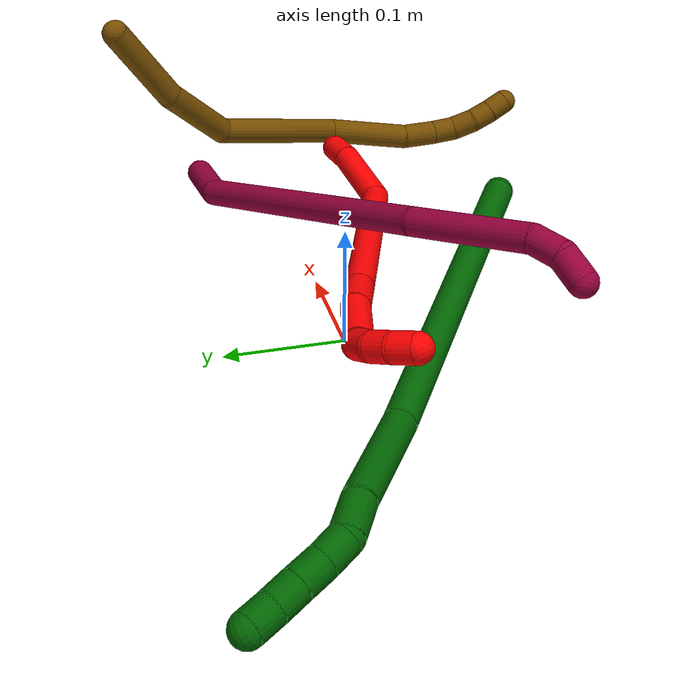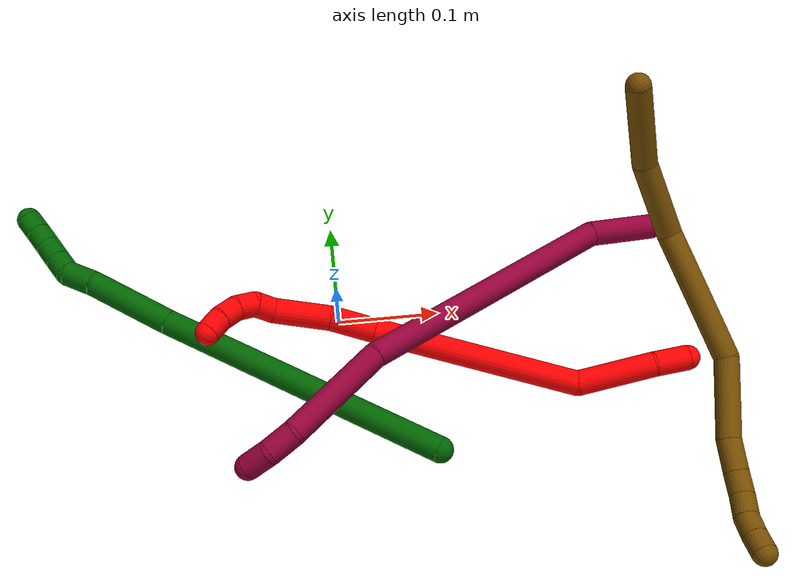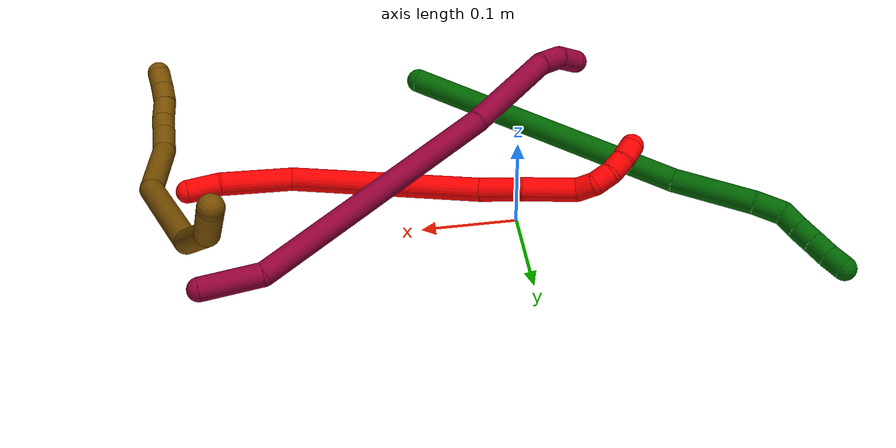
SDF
<sdf version="1.7">
 <world name="default">
  <model name="2">
   <static>0</static>
   <link name="2">
    <collision name="collision-cylinder-e_1_1_4">
     <pose>-0.013684 0.004619 0.009258 -0.462796 -0.923393 0.233405</pose>
     <geometry><cylinder><radius>0.0125</radius><length>0.034311</length></cylinder></geometry>
     <surface>
      <friction><ode><mu>1.16</mu><mu2>1.16</mu2><slip1>0</slip1><slip2>0</slip2></ode></friction>
      <contact><ode><kp>1e+06</kp><kd>1</kd><max_vel>0</max_vel><min_depth>0.001</min_depth></ode></contact>
     </surface>
    </collision>
    <visual name="visual-cylinder-e_1_1_4">
     <pose>-0.013684 0.004619 0.009258 -0.462796 -0.923393 0.233405</pose>
     <geometry><cylinder><radius>0.0125</radius><length>0.034311</length></cylinder></geometry>
     <material><ambient>1 0 0 1</ambient></material>
    </visual>
    <collision name="collision-cylinder-e_2_4_5">
     <pose>-0.054428 0.016309 0.045211 -0.258907 -0.775246 0.106201</pose>
     <geometry><cylinder><radius>0.0125</radius><length>0.077327</length></cylinder></geometry>
     <surface>
      <friction><ode><mu>1.16</mu><mu2>1.16</mu2><slip1>0</slip1><slip2>0</slip2></ode></friction>
      <contact><ode><kp>1e+06</kp><kd>1</kd><max_vel>0</max_vel><min_depth>0.001</min_depth></ode></contact>
     </surface>
    </collision>
    <visual name="visual-cylinder-e_2_4_5">
     <pose>-0.054428 0.016309 0.045211 -0.258907 -0.775246 0.106201</pose>
     <geometry><cylinder><radius>0.0125</radius><length>0.077327</length></cylinder></geometry>
     <material><ambient>1 0 0 1</ambient></material>
    </visual>
    <collision name="collision-cylinder-e_3_5_6">
     <pose>-0.175763 0.008448 0.110957 0.365194 -1.15339 -0.239072</pose>
     <geometry><cylinder><radius>0.0125</radius><length>0.206258</length></cylinder></geometry>
     <surface>
      <friction><ode><mu>1.16</mu><mu2>1.16</mu2><slip1>0</slip1><slip2>0</slip2></ode></friction>
      <contact><ode><kp>1e+06</kp><kd>1</kd><max_vel>0</max_vel><min_depth>0.001</min_depth></ode></contact>
     </surface>
    </collision>
    <visual name="visual-cylinder-e_3_5_6">
     <pose>-0.175763 0.008448 0.110957 0.365194 -1.15339 -0.239072</pose>
     <geometry><cylinder><radius>0.0125</radius><length>0.206258</length></cylinder></geometry>
     <material><ambient>1 0 0 1</ambient></material>
    </visual>
    <collision name="collision-cylinder-e_4_6_7">
     <pose>-0.29113 -0.008798 0.157003 0.319664 -1.2347 -0.227895</pose>
     <geometry><cylinder><radius>0.0125</radius><length>0.044685</length></cylinder></geometry>
     <surface>
      <friction><ode><mu>1.16</mu><mu2>1.16</mu2><slip1>0</slip1><slip2>0</slip2></ode></friction>
      <contact><ode><kp>1e+06</kp><kd>1</kd><max_vel>0</max_vel><min_depth>0.001</min_depth></ode></contact>
     </surface>
    </collision>
    <visual name="visual-cylinder-e_4_6_7">
     <pose>-0.29113 -0.008798 0.157003 0.319664 -1.2347 -0.227895</pose>
     <geometry><cylinder><radius>0.0125</radius><length>0.044685</length></cylinder></geometry>
     <material><ambient>1 0 0 1</ambient></material>
    </visual>
    <collision name="collision-cylinder-e_5_7_8">
     <pose>-0.337468 -0.012683 0.176971 0.120362 -1.09317 -0.073286</pose>
     <geometry><cylinder><radius>0.0125</radius><length>0.056854</length></cylinder></geometry>
     <surface>
      <friction><ode><mu>1.16</mu><mu2>1.16</mu2><slip1>0</slip1><slip2>0</slip2></ode></friction>
      <contact><ode><kp>1e+06</kp><kd>1</kd><max_vel>0</max_vel><min_depth>0.001</min_depth></ode></contact>
     </surface>
    </collision>
    <visual name="visual-cylinder-e_5_7_8">
     <pose>-0.337468 -0.012683 0.176971 0.120362 -1.09317 -0.073286</pose>
     <geometry><cylinder><radius>0.0125</radius><length>0.056854</length></cylinder></geometry>
     <material><ambient>1 0 0 1</ambient></material>
    </visual>
    <collision name="collision-cylinder-e_6_8_9">
     <pose>-0.372774 -0.013339 0.190287 -1.21094 -1.47416 1.12199</pose>
     <geometry><cylinder><radius>0.0125</radius><length>0.020214</length></cylinder></geometry>
     <surface>
      <friction><ode><mu>1.16</mu><mu2>1.16</mu2><slip1>0</slip1><slip2>0</slip2></ode></friction>
      <contact><ode><kp>1e+06</kp><kd>1</kd><max_vel>0</max_vel><min_depth>0.001</min_depth></ode></contact>
     </surface>
    </collision>
    <visual name="visual-cylinder-e_6_8_9">
     <pose>-0.372774 -0.013339 0.190287 -1.21094 -1.47416 1.12199</pose>
     <geometry><cylinder><radius>0.0125</radius><length>0.020214</length></cylinder></geometry>
     <material><ambient>1 0 0 1</ambient></material>
    </visual>
    <collision name="collision-cylinder-e_7_9_10">
     <pose>-0.391137 -0.007131 0.193185 -1.12132 -0.954681 0.628024</pose>
     <geometry><cylinder><radius>0.0125</radius><length>0.020347</length></cylinder></geometry>
     <surface>
      <friction><ode><mu>1.16</mu><mu2>1.16</mu2><slip1>0</slip1><slip2>0</slip2></ode></friction>
      <contact><ode><kp>1e+06</kp><kd>1</kd><max_vel>0</max_vel><min_depth>0.001</min_depth></ode></contact>
     </surface>
    </collision>
    <visual name="visual-cylinder-e_7_9_10">
     <pose>-0.391137 -0.007131 0.193185 -1.12132 -0.954681 0.628024</pose>
     <geometry><cylinder><radius>0.0125</radius><length>0.020347</length></cylinder></geometry>
     <material><ambient>1 0 0 1</ambient></material>
    </visual>
    <collision name="collision-cylinder-e_8_10_11">
     <pose>-0.405232 0.005666 0.198928 -1.16892 -0.617779 0.416105</pose>
     <geometry><cylinder><radius>0.0125</radius><length>0.02</length></cylinder></geometry>
     <surface>
      <friction><ode><mu>1.16</mu><mu2>1.16</mu2><slip1>0</slip1><slip2>0</slip2></ode></friction>
      <contact><ode><kp>1e+06</kp><kd>1</kd><max_vel>0</max_vel><min_depth>0.001</min_depth></ode></contact>
     </surface>
    </collision>
    <visual name="visual-cylinder-e_8_10_11">
     <pose>-0.405232 0.005666 0.198928 -1.16892 -0.617779 0.416105</pose>
     <geometry><cylinder><radius>0.0125</radius><length>0.02</length></cylinder></geometry>
     <material><ambient>1 0 0 1</ambient></material>
    </visual>
    <collision name="collision-cylinder-e_9_11_2">
     <pose>-0.41481 0.021654 0.205819 -1.15931 -0.388135 0.255936</pose>
     <geometry><cylinder><radius>0.0125</radius><length>0.020004</length></cylinder></geometry>
     <surface>
      <friction><ode><mu>1.16</mu><mu2>1.16</mu2><slip1>0</slip1><slip2>0</slip2></ode></friction>
      <contact><ode><kp>1e+06</kp><kd>1</kd><max_vel>0</max_vel><min_depth>0.001</min_depth></ode></contact>
     </surface>
    </collision>
    <visual name="visual-cylinder-e_9_11_2">
     <pose>-0.41481 0.021654 0.205819 -1.15931 -0.388135 0.255936</pose>
     <geometry><cylinder><radius>0.0125</radius><length>0.020004</length></cylinder></geometry>
     <material><ambient>1 0 0 1</ambient></material>
    </visual>
    <collision name="collision-sphere-2">
     <pose>-0.418595 0.030139 0.209522 0 -0 0</pose>
     <geometry><sphere><radius>0.0125</radius></sphere></geometry>
     <surface>
      <friction><ode><mu>1.16</mu><mu2>1.16</mu2><slip1>0</slip1><slip2>0</slip2></ode></friction>
      <contact><ode><kp>1e+06</kp><kd>1</kd><max_vel>0</max_vel><min_depth>0.001</min_depth></ode></contact>
     </surface>
    </collision>
    <visual name="visual-sphere-2">
     <pose>-0.418595 0.030139 0.209522 0 -0 0</pose>
     <geometry><sphere><radius>0.0125</radius></sphere></geometry>
     <material><ambient>1 0 0 1</ambient></material>
    </visual>
    <collision name="collision-sphere-11">
     <pose>-0.411024 0.013169 0.202117 0 -0 0</pose>
     <geometry><sphere><radius>0.0125</radius></sphere></geometry>
     <surface>
      <friction><ode><mu>1.16</mu><mu2>1.16</mu2><slip1>0</slip1><slip2>0</slip2></ode></friction>
      <contact><ode><kp>1e+06</kp><kd>1</kd><max_vel>0</max_vel><min_depth>0.001</min_depth></ode></contact>
     </surface>
    </collision>
    <visual name="visual-sphere-11">
     <pose>-0.411024 0.013169 0.202117 0 -0 0</pose>
     <geometry><sphere><radius>0.0125</radius></sphere></geometry>
     <material><ambient>1 0 0 1</ambient></material>
    </visual>
    <collision name="collision-sphere-10">
     <pose>-0.39944 -0.001836 0.19574 0 -0 0</pose>
     <geometry><sphere><radius>0.0125</radius></sphere></geometry>
     <surface>
      <friction><ode><mu>1.16</mu><mu2>1.16</mu2><slip1>0</slip1><slip2>0</slip2></ode></friction>
      <contact><ode><kp>1e+06</kp><kd>1</kd><max_vel>0</max_vel><min_depth>0.001</min_depth></ode></contact>
     </surface>
    </collision>
    <visual name="visual-sphere-10">
     <pose>-0.39944 -0.001836 0.19574 0 -0 0</pose>
     <geometry><sphere><radius>0.0125</radius></sphere></geometry>
     <material><ambient>1 0 0 1</ambient></material>
    </visual>
    <collision name="collision-sphere-9">
     <pose>-0.382833 -0.012426 0.190631 0 -0 0</pose>
     <geometry><sphere><radius>0.0125</radius></sphere></geometry>
     <surface>
      <friction><ode><mu>1.16</mu><mu2>1.16</mu2><slip1>0</slip1><slip2>0</slip2></ode></friction>
      <contact><ode><kp>1e+06</kp><kd>1</kd><max_vel>0</max_vel><min_depth>0.001</min_depth></ode></contact>
     </surface>
    </collision>
    <visual name="visual-sphere-9">
     <pose>-0.382833 -0.012426 0.190631 0 -0 0</pose>
     <geometry><sphere><radius>0.0125</radius></sphere></geometry>
     <material><ambient>1 0 0 1</ambient></material>
    </visual>
    <collision name="collision-sphere-4">
     <pose>-0.027368 0.009239 0.018517 0 -0 0</pose>
     <geometry><sphere><radius>0.0125</radius></sphere></geometry>
     <surface>
      <friction><ode><mu>1.16</mu><mu2>1.16</mu2><slip1>0</slip1><slip2>0</slip2></ode></friction>
      <contact><ode><kp>1e+06</kp><kd>1</kd><max_vel>0</max_vel><min_depth>0.001</min_depth></ode></contact>
     </surface>
    </collision>
    <visual name="visual-sphere-4">
     <pose>-0.027368 0.009239 0.018517 0 -0 0</pose>
     <geometry><sphere><radius>0.0125</radius></sphere></geometry>
     <material><ambient>1 0 0 1</ambient></material>
    </visual>
    <collision name="collision-sphere-1">
     <geometry><sphere><radius>0.0125</radius></sphere></geometry>
     <surface>
      <friction><ode><mu>1.16</mu><mu2>1.16</mu2><slip1>0</slip1><slip2>0</slip2></ode></friction>
      <contact><ode><kp>1e+06</kp><kd>1</kd><max_vel>0</max_vel><min_depth>0.001</min_depth></ode></contact>
     </surface>
    </collision>
    <visual name="visual-sphere-1">
     <geometry><sphere><radius>0.0125</radius></sphere></geometry>
     <material><ambient>1 0 0 1</ambient></material>
    </visual>
    <collision name="collision-sphere-8">
     <pose>-0.362714 -0.014252 0.189944 0 -0 0</pose>
     <geometry><sphere><radius>0.0125</radius></sphere></geometry>
     <surface>
      <friction><ode><mu>1.16</mu><mu2>1.16</mu2><slip1>0</slip1><slip2>0</slip2></ode></friction>
      <contact><ode><kp>1e+06</kp><kd>1</kd><max_vel>0</max_vel><min_depth>0.001</min_depth></ode></contact>
     </surface>
    </collision>
    <visual name="visual-sphere-8">
     <pose>-0.362714 -0.014252 0.189944 0 -0 0</pose>
     <geometry><sphere><radius>0.0125</radius></sphere></geometry>
     <material><ambient>1 0 0 1</ambient></material>
    </visual>
    <collision name="collision-sphere-5">
     <pose>-0.081488 0.023379 0.071906 0 -0 0</pose>
     <geometry><sphere><radius>0.0125</radius></sphere></geometry>
     <surface>
      <friction><ode><mu>1.16</mu><mu2>1.16</mu2><slip1>0</slip1><slip2>0</slip2></ode></friction>
      <contact><ode><kp>1e+06</kp><kd>1</kd><max_vel>0</max_vel><min_depth>0.001</min_depth></ode></contact>
     </surface>
    </collision>
    <visual name="visual-sphere-5">
     <pose>-0.081488 0.023379 0.071906 0 -0 0</pose>
     <geometry><sphere><radius>0.0125</radius></sphere></geometry>
     <material><ambient>1 0 0 1</ambient></material>
    </visual>
    <collision name="collision-sphere-6">
     <pose>-0.270038 -0.006483 0.150008 0 -0 0</pose>
     <geometry><sphere><radius>0.0125</radius></sphere></geometry>
     <surface>
      <friction><ode><mu>1.16</mu><mu2>1.16</mu2><slip1>0</slip1><slip2>0</slip2></ode></friction>
      <contact><ode><kp>1e+06</kp><kd>1</kd><max_vel>0</max_vel><min_depth>0.001</min_depth></ode></contact>
     </surface>
    </collision>
    <visual name="visual-sphere-6">
     <pose>-0.270038 -0.006483 0.150008 0 -0 0</pose>
     <geometry><sphere><radius>0.0125</radius></sphere></geometry>
     <material><ambient>1 0 0 1</ambient></material>
    </visual>
    <collision name="collision-sphere-7">
     <pose>-0.312222 -0.011114 0.163999 0 -0 0</pose>
     <geometry><sphere><radius>0.0125</radius></sphere></geometry>
     <surface>
      <friction><ode><mu>1.16</mu><mu2>1.16</mu2><slip1>0</slip1><slip2>0</slip2></ode></friction>
      <contact><ode><kp>1e+06</kp><kd>1</kd><max_vel>0</max_vel><min_depth>0.001</min_depth></ode></contact>
     </surface>
    </collision>
    <visual name="visual-sphere-7">
     <pose>-0.312222 -0.011114 0.163999 0 -0 0</pose>
     <geometry><sphere><radius>0.0125</radius></sphere></geometry>
     <material><ambient>1 0 0 1</ambient></material>
    </visual>
    <inertial>
     <pose>-0.210046 0.004359 0.1193 0 -0 0</pose>
     <mass>0.5</mass>
     <inertia>
      <ixx>0.000238</ixx>
      <ixy>0</ixy>
      <ixz>0</ixz>
      <iyy>0.000739</iyy>
      <iyz>0</iyz>
      <izz>0.00085</izz>
     </inertia>
    </inertial>
   </link>
   <pose>0.338247 -0.076214 0.020033 2.6486 0.492235 -0.390696</pose>
  </model>
  <model name="6">
   <static>0</static>
   <link name="6">
    <collision name="collision-cylinder-e_1_1_4">
     <pose>-0.133121 0.039055 -0.055755 -2.53055 -1.0981 2.18962</pose>
     <geometry><cylinder><radius>0.0125</radius><length>0.299033</length></cylinder></geometry>
     <surface>
      <friction><ode><mu>1.16</mu><mu2>1.16</mu2><slip1>0</slip1><slip2>0</slip2></ode></friction>
      <contact><ode><kp>1e+06</kp><kd>1</kd><max_vel>0</max_vel><min_depth>0.001</min_depth></ode></contact>
     </surface>
    </collision>
    <visual name="visual-cylinder-e_1_1_4">
     <pose>-0.133121 0.039055 -0.055755 -2.53055 -1.0981 2.18962</pose>
     <geometry><cylinder><radius>0.0125</radius><length>0.299033</length></cylinder></geometry>
     <material><ambient>0 0.392157 0.003922 1</ambient></material>
    </visual>
    <collision name="collision-cylinder-e_2_4_5">
     <pose>-0.304195 0.094603 -0.124396 -2.23399 -1.06681 1.7608</pose>
     <geometry><cylinder><radius>0.0125</radius><length>0.086682</length></cylinder></geometry>
     <surface>
      <friction><ode><mu>1.16</mu><mu2>1.16</mu2><slip1>0</slip1><slip2>0</slip2></ode></friction>
      <contact><ode><kp>1e+06</kp><kd>1</kd><max_vel>0</max_vel><min_depth>0.001</min_depth></ode></contact>
     </surface>
    </collision>
    <visual name="visual-cylinder-e_2_4_5">
     <pose>-0.304195 0.094603 -0.124396 -2.23399 -1.06681 1.7608</pose>
     <geometry><cylinder><radius>0.0125</radius><length>0.086682</length></cylinder></geometry>
     <material><ambient>0 0.392157 0.003922 1</ambient></material>
    </visual>
    <collision name="collision-cylinder-e_3_5_6">
     <pose>-0.356062 0.114369 -0.142535 -2.58448 -1.15229 2.31223</pose>
     <geometry><cylinder><radius>0.0125</radius><length>0.03046</length></cylinder></geometry>
     <surface>
      <friction><ode><mu>1.16</mu><mu2>1.16</mu2><slip1>0</slip1><slip2>0</slip2></ode></friction>
      <contact><ode><kp>1e+06</kp><kd>1</kd><max_vel>0</max_vel><min_depth>0.001</min_depth></ode></contact>
     </surface>
    </collision>
    <visual name="visual-cylinder-e_3_5_6">
     <pose>-0.356062 0.114369 -0.142535 -2.58448 -1.15229 2.31223</pose>
     <geometry><cylinder><radius>0.0125</radius><length>0.03046</length></cylinder></geometry>
     <material><ambient>0 0.392157 0.003922 1</ambient></material>
    </visual>
    <collision name="collision-cylinder-e_4_6_7">
     <pose>-0.376482 0.120655 -0.155695 -2.77741 -0.655313 2.14869</pose>
     <geometry><cylinder><radius>0.0125</radius><length>0.021344</length></cylinder></geometry>
     <surface>
      <friction><ode><mu>1.16</mu><mu2>1.16</mu2><slip1>0</slip1><slip2>0</slip2></ode></friction>
      <contact><ode><kp>1e+06</kp><kd>1</kd><max_vel>0</max_vel><min_depth>0.001</min_depth></ode></contact>
     </surface>
    </collision>
    <visual name="visual-cylinder-e_4_6_7">
     <pose>-0.376482 0.120655 -0.155695 -2.77741 -0.655313 2.14869</pose>
     <geometry><cylinder><radius>0.0125</radius><length>0.021344</length></cylinder></geometry>
     <material><ambient>0 0.392157 0.003922 1</ambient></material>
    </visual>
    <collision name="collision-cylinder-e_5_7_8">
     <pose>-0.389525 0.127721 -0.171286 -2.65637 -0.645281 1.86712</pose>
     <geometry><cylinder><radius>0.0125</radius><length>0.021749</length></cylinder></geometry>
     <surface>
      <friction><ode><mu>1.16</mu><mu2>1.16</mu2><slip1>0</slip1><slip2>0</slip2></ode></friction>
      <contact><ode><kp>1e+06</kp><kd>1</kd><max_vel>0</max_vel><min_depth>0.001</min_depth></ode></contact>
     </surface>
    </collision>
    <visual name="visual-cylinder-e_5_7_8">
     <pose>-0.389525 0.127721 -0.171286 -2.65637 -0.645281 1.86712</pose>
     <geometry><cylinder><radius>0.0125</radius><length>0.021749</length></cylinder></geometry>
     <material><ambient>0 0.392157 0.003922 1</ambient></material>
    </visual>
    <collision name="collision-cylinder-e_6_8_9">
     <pose>-0.402341 0.135458 -0.18633 -2.67735 -0.651532 1.92046</pose>
     <geometry><cylinder><radius>0.0125</radius><length>0.020699</length></cylinder></geometry>
     <surface>
      <friction><ode><mu>1.16</mu><mu2>1.16</mu2><slip1>0</slip1><slip2>0</slip2></ode></friction>
      <contact><ode><kp>1e+06</kp><kd>1</kd><max_vel>0</max_vel><min_depth>0.001</min_depth></ode></contact>
     </surface>
    </collision>
    <visual name="visual-cylinder-e_6_8_9">
     <pose>-0.402341 0.135458 -0.18633 -2.67735 -0.651532 1.92046</pose>
     <geometry><cylinder><radius>0.0125</radius><length>0.020699</length></cylinder></geometry>
     <material><ambient>0 0.392157 0.003922 1</ambient></material>
    </visual>
    <collision name="collision-cylinder-e_7_9_2">
     <pose>-0.414828 0.143411 -0.200287 -2.56746 -0.66873 1.73287</pose>
     <geometry><cylinder><radius>0.0125</radius><length>0.020034</length></cylinder></geometry>
     <surface>
      <friction><ode><mu>1.16</mu><mu2>1.16</mu2><slip1>0</slip1><slip2>0</slip2></ode></friction>
      <contact><ode><kp>1e+06</kp><kd>1</kd><max_vel>0</max_vel><min_depth>0.001</min_depth></ode></contact>
     </surface>
    </collision>
    <visual name="visual-cylinder-e_7_9_2">
     <pose>-0.414828 0.143411 -0.200287 -2.56746 -0.66873 1.73287</pose>
     <geometry><cylinder><radius>0.0125</radius><length>0.020034</length></cylinder></geometry>
     <material><ambient>0 0.392157 0.003922 1</ambient></material>
    </visual>
    <collision name="collision-sphere-2">
     <pose>-0.421038 0.147679 -0.206886 0 -0 0</pose>
     <geometry><sphere><radius>0.0125</radius></sphere></geometry>
     <surface>
      <friction><ode><mu>1.16</mu><mu2>1.16</mu2><slip1>0</slip1><slip2>0</slip2></ode></friction>
      <contact><ode><kp>1e+06</kp><kd>1</kd><max_vel>0</max_vel><min_depth>0.001</min_depth></ode></contact>
     </surface>
    </collision>
    <visual name="visual-sphere-2">
     <pose>-0.421038 0.147679 -0.206886 0 -0 0</pose>
     <geometry><sphere><radius>0.0125</radius></sphere></geometry>
     <material><ambient>0 0.392157 0.003922 1</ambient></material>
    </visual>
    <collision name="collision-sphere-9">
     <pose>-0.408617 0.139143 -0.193688 0 -0 0</pose>
     <geometry><sphere><radius>0.0125</radius></sphere></geometry>
     <surface>
      <friction><ode><mu>1.16</mu><mu2>1.16</mu2><slip1>0</slip1><slip2>0</slip2></ode></friction>
      <contact><ode><kp>1e+06</kp><kd>1</kd><max_vel>0</max_vel><min_depth>0.001</min_depth></ode></contact>
     </surface>
    </collision>
    <visual name="visual-sphere-9">
     <pose>-0.408617 0.139143 -0.193688 0 -0 0</pose>
     <geometry><sphere><radius>0.0125</radius></sphere></geometry>
     <material><ambient>0 0.392157 0.003922 1</ambient></material>
    </visual>
    <collision name="collision-sphere-4">
     <pose>-0.266243 0.078109 -0.11151 0 -0 0</pose>
     <geometry><sphere><radius>0.0125</radius></sphere></geometry>
     <surface>
      <friction><ode><mu>1.16</mu><mu2>1.16</mu2><slip1>0</slip1><slip2>0</slip2></ode></friction>
      <contact><ode><kp>1e+06</kp><kd>1</kd><max_vel>0</max_vel><min_depth>0.001</min_depth></ode></contact>
     </surface>
    </collision>
    <visual name="visual-sphere-4">
     <pose>-0.266243 0.078109 -0.11151 0 -0 0</pose>
     <geometry><sphere><radius>0.0125</radius></sphere></geometry>
     <material><ambient>0 0.392157 0.003922 1</ambient></material>
    </visual>
    <collision name="collision-sphere-1">
     <geometry><sphere><radius>0.0125</radius></sphere></geometry>
     <surface>
      <friction><ode><mu>1.16</mu><mu2>1.16</mu2><slip1>0</slip1><slip2>0</slip2></ode></friction>
      <contact><ode><kp>1e+06</kp><kd>1</kd><max_vel>0</max_vel><min_depth>0.001</min_depth></ode></contact>
     </surface>
    </collision>
    <visual name="visual-sphere-1">
     <geometry><sphere><radius>0.0125</radius></sphere></geometry>
     <material><ambient>0 0.392157 0.003922 1</ambient></material>
    </visual>
    <collision name="collision-sphere-8">
     <pose>-0.396066 0.131773 -0.178971 0 -0 0</pose>
     <geometry><sphere><radius>0.0125</radius></sphere></geometry>
     <surface>
      <friction><ode><mu>1.16</mu><mu2>1.16</mu2><slip1>0</slip1><slip2>0</slip2></ode></friction>
      <contact><ode><kp>1e+06</kp><kd>1</kd><max_vel>0</max_vel><min_depth>0.001</min_depth></ode></contact>
     </surface>
    </collision>
    <visual name="visual-sphere-8">
     <pose>-0.396066 0.131773 -0.178971 0 -0 0</pose>
     <geometry><sphere><radius>0.0125</radius></sphere></geometry>
     <material><ambient>0 0.392157 0.003922 1</ambient></material>
    </visual>
    <collision name="collision-sphere-5">
     <pose>-0.342147 0.111097 -0.137281 0 -0 0</pose>
     <geometry><sphere><radius>0.0125</radius></sphere></geometry>
     <surface>
      <friction><ode><mu>1.16</mu><mu2>1.16</mu2><slip1>0</slip1><slip2>0</slip2></ode></friction>
      <contact><ode><kp>1e+06</kp><kd>1</kd><max_vel>0</max_vel><min_depth>0.001</min_depth></ode></contact>
     </surface>
    </collision>
    <visual name="visual-sphere-5">
     <pose>-0.342147 0.111097 -0.137281 0 -0 0</pose>
     <geometry><sphere><radius>0.0125</radius></sphere></geometry>
     <material><ambient>0 0.392157 0.003922 1</ambient></material>
    </visual>
    <collision name="collision-sphere-6">
     <pose>-0.369978 0.117642 -0.147788 0 -0 0</pose>
     <geometry><sphere><radius>0.0125</radius></sphere></geometry>
     <surface>
      <friction><ode><mu>1.16</mu><mu2>1.16</mu2><slip1>0</slip1><slip2>0</slip2></ode></friction>
      <contact><ode><kp>1e+06</kp><kd>1</kd><max_vel>0</max_vel><min_depth>0.001</min_depth></ode></contact>
     </surface>
    </collision>
    <visual name="visual-sphere-6">
     <pose>-0.369978 0.117642 -0.147788 0 -0 0</pose>
     <geometry><sphere><radius>0.0125</radius></sphere></geometry>
     <material><ambient>0 0.392157 0.003922 1</ambient></material>
    </visual>
    <collision name="collision-sphere-7">
     <pose>-0.382985 0.123669 -0.163601 0 -0 0</pose>
     <geometry><sphere><radius>0.0125</radius></sphere></geometry>
     <surface>
      <friction><ode><mu>1.16</mu><mu2>1.16</mu2><slip1>0</slip1><slip2>0</slip2></ode></friction>
      <contact><ode><kp>1e+06</kp><kd>1</kd><max_vel>0</max_vel><min_depth>0.001</min_depth></ode></contact>
     </surface>
    </collision>
    <visual name="visual-sphere-7">
     <pose>-0.382985 0.123669 -0.163601 0 -0 0</pose>
     <geometry><sphere><radius>0.0125</radius></sphere></geometry>
     <material><ambient>0 0.392157 0.003922 1</ambient></material>
    </visual>
    <inertial>
     <pose>-0.220335 0.068785 -0.093429 0 -0 0</pose>
     <mass>0.5</mass>
     <inertia>
      <ixx>0.000231</ixx>
      <ixy>0</ixy>
      <ixz>0</ixz>
      <iyy>0.002924</iyy>
      <iyz>0</iyz>
      <izz>0.001426</izz>
     </inertia>
    </inertial>
   </link>
   <pose>0.081901 -0.158248 0.078672 0.922668 -0.140714 -0.100296</pose>
  </model>
  <model name="8">
   <static>0</static>
   <link name="8">
    <collision name="collision-cylinder-e_1_1_4">
     <pose>-0.024457 -0.00688 -0.019391 2.80066 -0.871392 -2.43325</pose>
     <geometry><cylinder><radius>0.0125</radius><length>0.063922</length></cylinder></geometry>
     <surface>
      <friction><ode><mu>1.16</mu><mu2>1.16</mu2><slip1>0</slip1><slip2>0</slip2></ode></friction>
      <contact><ode><kp>1e+06</kp><kd>1</kd><max_vel>0</max_vel><min_depth>0.001</min_depth></ode></contact>
     </surface>
    </collision>
    <visual name="visual-cylinder-e_1_1_4">
     <pose>-0.024457 -0.00688 -0.019391 2.80066 -0.871392 -2.43325</pose>
     <geometry><cylinder><radius>0.0125</radius><length>0.063922</length></cylinder></geometry>
     <material><ambient>0.584314 0 0.227451 1</ambient></material>
    </visual>
    <collision name="collision-cylinder-e_2_4_5">
     <pose>-0.160537 -0.082818 -0.076914 2.0753 -0.95557 -1.44037</pose>
     <geometry><cylinder><radius>0.0125</radius><length>0.273368</length></cylinder></geometry>
     <surface>
      <friction><ode><mu>1.16</mu><mu2>1.16</mu2><slip1>0</slip1><slip2>0</slip2></ode></friction>
      <contact><ode><kp>1e+06</kp><kd>1</kd><max_vel>0</max_vel><min_depth>0.001</min_depth></ode></contact>
     </surface>
    </collision>
    <visual name="visual-cylinder-e_2_4_5">
     <pose>-0.160537 -0.082818 -0.076914 2.0753 -0.95557 -1.44037</pose>
     <geometry><cylinder><radius>0.0125</radius><length>0.273368</length></cylinder></geometry>
     <material><ambient>0.584314 0 0.227451 1</ambient></material>
    </visual>
    <collision name="collision-cylinder-e_3_5_6">
     <pose>-0.31003 -0.189234 -0.125782 1.85067 -0.772375 -0.990159</pose>
     <geometry><cylinder><radius>0.0125</radius><length>0.108537</length></cylinder></geometry>
     <surface>
      <friction><ode><mu>1.16</mu><mu2>1.16</mu2><slip1>0</slip1><slip2>0</slip2></ode></friction>
      <contact><ode><kp>1e+06</kp><kd>1</kd><max_vel>0</max_vel><min_depth>0.001</min_depth></ode></contact>
     </surface>
    </collision>
    <visual name="visual-cylinder-e_3_5_6">
     <pose>-0.31003 -0.189234 -0.125782 1.85067 -0.772375 -0.990159</pose>
     <geometry><cylinder><radius>0.0125</radius><length>0.108537</length></cylinder></geometry>
     <material><ambient>0.584314 0 0.227451 1</ambient></material>
    </visual>
    <collision name="collision-cylinder-e_4_6_7">
     <pose>-0.355477 -0.236205 -0.143242 2.18107 -0.573467 -1.0301</pose>
     <geometry><cylinder><radius>0.0125</radius><length>0.027931</length></cylinder></geometry>
     <surface>
      <friction><ode><mu>1.16</mu><mu2>1.16</mu2><slip1>0</slip1><slip2>0</slip2></ode></friction>
      <contact><ode><kp>1e+06</kp><kd>1</kd><max_vel>0</max_vel><min_depth>0.001</min_depth></ode></contact>
     </surface>
    </collision>
    <visual name="visual-cylinder-e_4_6_7">
     <pose>-0.355477 -0.236205 -0.143242 2.18107 -0.573467 -1.0301</pose>
     <geometry><cylinder><radius>0.0125</radius><length>0.027931</length></cylinder></geometry>
     <material><ambient>0.584314 0 0.227451 1</ambient></material>
    </visual>
    <collision name="collision-cylinder-e_5_7_2">
     <pose>-0.366155 -0.253837 -0.159878 2.46144 -0.238584 -0.65325</pose>
     <geometry><cylinder><radius>0.0125</radius><length>0.026242</length></cylinder></geometry>
     <surface>
      <friction><ode><mu>1.16</mu><mu2>1.16</mu2><slip1>0</slip1><slip2>0</slip2></ode></friction>
      <contact><ode><kp>1e+06</kp><kd>1</kd><max_vel>0</max_vel><min_depth>0.001</min_depth></ode></contact>
     </surface>
    </collision>
    <visual name="visual-cylinder-e_5_7_2">
     <pose>-0.366155 -0.253837 -0.159878 2.46144 -0.238584 -0.65325</pose>
     <geometry><cylinder><radius>0.0125</radius><length>0.026242</length></cylinder></geometry>
     <material><ambient>0.584314 0 0.227451 1</ambient></material>
    </visual>
    <collision name="collision-sphere-2">
     <pose>-0.369256 -0.261855 -0.16979 0 -0 0</pose>
     <geometry><sphere><radius>0.0125</radius></sphere></geometry>
     <surface>
      <friction><ode><mu>1.16</mu><mu2>1.16</mu2><slip1>0</slip1><slip2>0</slip2></ode></friction>
      <contact><ode><kp>1e+06</kp><kd>1</kd><max_vel>0</max_vel><min_depth>0.001</min_depth></ode></contact>
     </surface>
    </collision>
    <visual name="visual-sphere-2">
     <pose>-0.369256 -0.261855 -0.16979 0 -0 0</pose>
     <geometry><sphere><radius>0.0125</radius></sphere></geometry>
     <material><ambient>0.584314 0 0.227451 1</ambient></material>
    </visual>
    <collision name="collision-sphere-7">
     <pose>-0.363054 -0.245819 -0.149966 0 -0 0</pose>
     <geometry><sphere><radius>0.0125</radius></sphere></geometry>
     <surface>
      <friction><ode><mu>1.16</mu><mu2>1.16</mu2><slip1>0</slip1><slip2>0</slip2></ode></friction>
      <contact><ode><kp>1e+06</kp><kd>1</kd><max_vel>0</max_vel><min_depth>0.001</min_depth></ode></contact>
     </surface>
    </collision>
    <visual name="visual-sphere-7">
     <pose>-0.363054 -0.245819 -0.149966 0 -0 0</pose>
     <geometry><sphere><radius>0.0125</radius></sphere></geometry>
     <material><ambient>0.584314 0 0.227451 1</ambient></material>
    </visual>
    <collision name="collision-sphere-6">
     <pose>-0.3479 -0.226591 -0.136519 0 -0 0</pose>
     <geometry><sphere><radius>0.0125</radius></sphere></geometry>
     <surface>
      <friction><ode><mu>1.16</mu><mu2>1.16</mu2><slip1>0</slip1><slip2>0</slip2></ode></friction>
      <contact><ode><kp>1e+06</kp><kd>1</kd><max_vel>0</max_vel><min_depth>0.001</min_depth></ode></contact>
     </surface>
    </collision>
    <visual name="visual-sphere-6">
     <pose>-0.3479 -0.226591 -0.136519 0 -0 0</pose>
     <geometry><sphere><radius>0.0125</radius></sphere></geometry>
     <material><ambient>0.584314 0 0.227451 1</ambient></material>
    </visual>
    <collision name="collision-sphere-5">
     <pose>-0.272159 -0.151876 -0.115045 0 -0 0</pose>
     <geometry><sphere><radius>0.0125</radius></sphere></geometry>
     <surface>
      <friction><ode><mu>1.16</mu><mu2>1.16</mu2><slip1>0</slip1><slip2>0</slip2></ode></friction>
      <contact><ode><kp>1e+06</kp><kd>1</kd><max_vel>0</max_vel><min_depth>0.001</min_depth></ode></contact>
     </surface>
    </collision>
    <visual name="visual-sphere-5">
     <pose>-0.272159 -0.151876 -0.115045 0 -0 0</pose>
     <geometry><sphere><radius>0.0125</radius></sphere></geometry>
     <material><ambient>0.584314 0 0.227451 1</ambient></material>
    </visual>
    <collision name="collision-sphere-1">
     <geometry><sphere><radius>0.0125</radius></sphere></geometry>
     <surface>
      <friction><ode><mu>1.16</mu><mu2>1.16</mu2><slip1>0</slip1><slip2>0</slip2></ode></friction>
      <contact><ode><kp>1e+06</kp><kd>1</kd><max_vel>0</max_vel><min_depth>0.001</min_depth></ode></contact>
     </surface>
    </collision>
    <visual name="visual-sphere-1">
     <geometry><sphere><radius>0.0125</radius></sphere></geometry>
     <material><ambient>0.584314 0 0.227451 1</ambient></material>
    </visual>
    <collision name="collision-sphere-4">
     <pose>-0.048915 -0.013759 -0.038782 0 -0 0</pose>
     <geometry><sphere><radius>0.0125</radius></sphere></geometry>
     <surface>
      <friction><ode><mu>1.16</mu><mu2>1.16</mu2><slip1>0</slip1><slip2>0</slip2></ode></friction>
      <contact><ode><kp>1e+06</kp><kd>1</kd><max_vel>0</max_vel><min_depth>0.001</min_depth></ode></contact>
     </surface>
    </collision>
    <visual name="visual-sphere-4">
     <pose>-0.048915 -0.013759 -0.038782 0 -0 0</pose>
     <geometry><sphere><radius>0.0125</radius></sphere></geometry>
     <material><ambient>0.584314 0 0.227451 1</ambient></material>
    </visual>
    <inertial>
     <pose>-0.197272 -0.113754 -0.088227 0 -0 0</pose>
     <mass>0.5</mass>
     <inertia>
      <ixx>-0.000926</ixx>
      <ixy>0</ixy>
      <ixz>0</ixz>
      <iyy>9.1e-05</iyy>
      <iyz>0</iyz>
      <izz>0.002434</izz>
     </inertia>
    </inertial>
   </link>
   <pose>0.326509 0.068269 0.012573 0.485873 0.795063 0.171165</pose>
  </model>
  <model name="12">
   <static>0</static>
   <link name="12">
    <collision name="collision-cylinder-e_1_1_4">
     <pose>0.037011 -0.00316 0.021032 0.149143 1.04924 0.086417</pose>
     <geometry><cylinder><radius>0.0125</radius><length>0.085372</length></cylinder></geometry>
     <surface>
      <friction><ode><mu>1.16</mu><mu2>1.16</mu2><slip1>0</slip1><slip2>0</slip2></ode></friction>
      <contact><ode><kp>1e+06</kp><kd>1</kd><max_vel>0</max_vel><min_depth>0.001</min_depth></ode></contact>
     </surface>
    </collision>
    <visual name="visual-cylinder-e_1_1_4">
     <pose>0.037011 -0.00316 0.021032 0.149143 1.04924 0.086417</pose>
     <geometry><cylinder><radius>0.0125</radius><length>0.085372</length></cylinder></geometry>
     <material><ambient>0.466667 0.301961 0 1</ambient></material>
    </visual>
    <collision name="collision-cylinder-e_2_4_5">
     <pose>0.102721 -0.00525 0.069677 -0.03874 0.804311 -0.016479</pose>
     <geometry><cylinder><radius>0.0125</radius><length>0.079683</length></cylinder></geometry>
     <surface>
      <friction><ode><mu>1.16</mu><mu2>1.16</mu2><slip1>0</slip1><slip2>0</slip2></ode></friction>
      <contact><ode><kp>1e+06</kp><kd>1</kd><max_vel>0</max_vel><min_depth>0.001</min_depth></ode></contact>
     </surface>
    </collision>
    <visual name="visual-cylinder-e_2_4_5">
     <pose>0.102721 -0.00525 0.069677 -0.03874 0.804311 -0.016479</pose>
     <geometry><cylinder><radius>0.0125</radius><length>0.079683</length></cylinder></geometry>
     <material><ambient>0.466667 0.301961 0 1</ambient></material>
    </visual>
    <collision name="collision-cylinder-e_3_5_6">
     <pose>0.151894 -0.013672 0.160295 0.149527 0.310888 0.023475</pose>
     <geometry><cylinder><radius>0.0125</radius><length>0.133849</length></cylinder></geometry>
     <surface>
      <friction><ode><mu>1.16</mu><mu2>1.16</mu2><slip1>0</slip1><slip2>0</slip2></ode></friction>
      <contact><ode><kp>1e+06</kp><kd>1</kd><max_vel>0</max_vel><min_depth>0.001</min_depth></ode></contact>
     </surface>
    </collision>
    <visual name="visual-cylinder-e_3_5_6">
     <pose>0.151894 -0.013672 0.160295 0.149527 0.310888 0.023475</pose>
     <geometry><cylinder><radius>0.0125</radius><length>0.133849</length></cylinder></geometry>
     <material><ambient>0.466667 0.301961 0 1</ambient></material>
    </visual>
    <collision name="collision-cylinder-e_4_6_7">
     <pose>0.182258 -0.045571 0.255297 0.610922 0.248016 0.07857</pose>
     <geometry><cylinder><radius>0.0125</radius><length>0.080591</length></cylinder></geometry>
     <surface>
      <friction><ode><mu>1.16</mu><mu2>1.16</mu2><slip1>0</slip1><slip2>0</slip2></ode></friction>
      <contact><ode><kp>1e+06</kp><kd>1</kd><max_vel>0</max_vel><min_depth>0.001</min_depth></ode></contact>
     </surface>
    </collision>
    <visual name="visual-cylinder-e_4_6_7">
     <pose>0.182258 -0.045571 0.255297 0.610922 0.248016 0.07857</pose>
     <geometry><cylinder><radius>0.0125</radius><length>0.080591</length></cylinder></geometry>
     <material><ambient>0.466667 0.301961 0 1</ambient></material>
    </visual>
    <collision name="collision-cylinder-e_5_7_8">
     <pose>0.19341 -0.075306 0.301909 0.464801 0.076931 0.018216</pose>
     <geometry><cylinder><radius>0.0125</radius><length>0.032794</length></cylinder></geometry>
     <surface>
      <friction><ode><mu>1.16</mu><mu2>1.16</mu2><slip1>0</slip1><slip2>0</slip2></ode></friction>
      <contact><ode><kp>1e+06</kp><kd>1</kd><max_vel>0</max_vel><min_depth>0.001</min_depth></ode></contact>
     </surface>
    </collision>
    <visual name="visual-cylinder-e_5_7_8">
     <pose>0.19341 -0.075306 0.301909 0.464801 0.076931 0.018216</pose>
     <geometry><cylinder><radius>0.0125</radius><length>0.032794</length></cylinder></geometry>
     <material><ambient>0.466667 0.301961 0 1</ambient></material>
    </visual>
    <collision name="collision-cylinder-e_6_8_9">
     <pose>0.194917 -0.087808 0.327019 0.457926 0.0211 0.004917</pose>
     <geometry><cylinder><radius>0.0125</radius><length>0.02341</length></cylinder></geometry>
     <surface>
      <friction><ode><mu>1.16</mu><mu2>1.16</mu2><slip1>0</slip1><slip2>0</slip2></ode></friction>
      <contact><ode><kp>1e+06</kp><kd>1</kd><max_vel>0</max_vel><min_depth>0.001</min_depth></ode></contact>
     </surface>
    </collision>
    <visual name="visual-cylinder-e_6_8_9">
     <pose>0.194917 -0.087808 0.327019 0.457926 0.0211 0.004917</pose>
     <geometry><cylinder><radius>0.0125</radius><length>0.02341</length></cylinder></geometry>
     <material><ambient>0.466667 0.301961 0 1</ambient></material>
    </visual>
    <collision name="collision-cylinder-e_7_9_10">
     <pose>0.192308 -0.09958 0.346988 0.608473 -0.242576 -0.076504</pose>
     <geometry><cylinder><radius>0.0125</radius><length>0.023783</length></cylinder></geometry>
     <surface>
      <friction><ode><mu>1.16</mu><mu2>1.16</mu2><slip1>0</slip1><slip2>0</slip2></ode></friction>
      <contact><ode><kp>1e+06</kp><kd>1</kd><max_vel>0</max_vel><min_depth>0.001</min_depth></ode></contact>
     </surface>
    </collision>
    <visual name="visual-cylinder-e_7_9_10">
     <pose>0.192308 -0.09958 0.346988 0.608473 -0.242576 -0.076504</pose>
     <geometry><cylinder><radius>0.0125</radius><length>0.023783</length></cylinder></geometry>
     <material><ambient>0.466667 0.301961 0 1</ambient></material>
    </visual>
    <collision name="collision-cylinder-e_8_10_11">
     <pose>0.186499 -0.109934 0.365398 0.397858 -0.29556 -0.060003</pose>
     <geometry><cylinder><radius>0.0125</radius><length>0.020271</length></cylinder></geometry>
     <surface>
      <friction><ode><mu>1.16</mu><mu2>1.16</mu2><slip1>0</slip1><slip2>0</slip2></ode></friction>
      <contact><ode><kp>1e+06</kp><kd>1</kd><max_vel>0</max_vel><min_depth>0.001</min_depth></ode></contact>
     </surface>
    </collision>
    <visual name="visual-cylinder-e_8_10_11">
     <pose>0.186499 -0.109934 0.365398 0.397858 -0.29556 -0.060003</pose>
     <geometry><cylinder><radius>0.0125</radius><length>0.020271</length></cylinder></geometry>
     <material><ambient>0.466667 0.301961 0 1</ambient></material>
    </visual>
    <collision name="collision-cylinder-e_9_11_2">
     <pose>0.180081 -0.116841 0.383312 0.337498 -0.349476 -0.060135</pose>
     <geometry><cylinder><radius>0.0125</radius><length>0.020247</length></cylinder></geometry>
     <surface>
      <friction><ode><mu>1.16</mu><mu2>1.16</mu2><slip1>0</slip1><slip2>0</slip2></ode></friction>
      <contact><ode><kp>1e+06</kp><kd>1</kd><max_vel>0</max_vel><min_depth>0.001</min_depth></ode></contact>
     </surface>
    </collision>
    <visual name="visual-cylinder-e_9_11_2">
     <pose>0.180081 -0.116841 0.383312 0.337498 -0.349476 -0.060135</pose>
     <geometry><cylinder><radius>0.0125</radius><length>0.020247</length></cylinder></geometry>
     <material><ambient>0.466667 0.301961 0 1</ambient></material>
    </visual>
    <collision name="collision-sphere-2">
     <pose>0.176614 -0.11999 0.392287 0 -0 0</pose>
     <geometry><sphere><radius>0.0125</radius></sphere></geometry>
     <surface>
      <friction><ode><mu>1.16</mu><mu2>1.16</mu2><slip1>0</slip1><slip2>0</slip2></ode></friction>
      <contact><ode><kp>1e+06</kp><kd>1</kd><max_vel>0</max_vel><min_depth>0.001</min_depth></ode></contact>
     </surface>
    </collision>
    <visual name="visual-sphere-2">
     <pose>0.176614 -0.11999 0.392287 0 -0 0</pose>
     <geometry><sphere><radius>0.0125</radius></sphere></geometry>
     <material><ambient>0.466667 0.301961 0 1</ambient></material>
    </visual>
    <collision name="collision-sphere-11">
     <pose>0.183547 -0.113691 0.374337 0 -0 0</pose>
     <geometry><sphere><radius>0.0125</radius></sphere></geometry>
     <surface>
      <friction><ode><mu>1.16</mu><mu2>1.16</mu2><slip1>0</slip1><slip2>0</slip2></ode></friction>
      <contact><ode><kp>1e+06</kp><kd>1</kd><max_vel>0</max_vel><min_depth>0.001</min_depth></ode></contact>
     </surface>
    </collision>
    <visual name="visual-sphere-11">
     <pose>0.183547 -0.113691 0.374337 0 -0 0</pose>
     <geometry><sphere><radius>0.0125</radius></sphere></geometry>
     <material><ambient>0.466667 0.301961 0 1</ambient></material>
    </visual>
    <collision name="collision-sphere-10">
     <pose>0.189451 -0.106178 0.356459 0 -0 0</pose>
     <geometry><sphere><radius>0.0125</radius></sphere></geometry>
     <surface>
      <friction><ode><mu>1.16</mu><mu2>1.16</mu2><slip1>0</slip1><slip2>0</slip2></ode></friction>
      <contact><ode><kp>1e+06</kp><kd>1</kd><max_vel>0</max_vel><min_depth>0.001</min_depth></ode></contact>
     </surface>
    </collision>
    <visual name="visual-sphere-10">
     <pose>0.189451 -0.106178 0.356459 0 -0 0</pose>
     <geometry><sphere><radius>0.0125</radius></sphere></geometry>
     <material><ambient>0.466667 0.301961 0 1</ambient></material>
    </visual>
    <collision name="collision-sphere-9">
     <pose>0.195164 -0.092981 0.337516 0 -0 0</pose>
     <geometry><sphere><radius>0.0125</radius></sphere></geometry>
     <surface>
      <friction><ode><mu>1.16</mu><mu2>1.16</mu2><slip1>0</slip1><slip2>0</slip2></ode></friction>
      <contact><ode><kp>1e+06</kp><kd>1</kd><max_vel>0</max_vel><min_depth>0.001</min_depth></ode></contact>
     </surface>
    </collision>
    <visual name="visual-sphere-9">
     <pose>0.195164 -0.092981 0.337516 0 -0 0</pose>
     <geometry><sphere><radius>0.0125</radius></sphere></geometry>
     <material><ambient>0.466667 0.301961 0 1</ambient></material>
    </visual>
    <collision name="collision-sphere-4">
     <pose>0.074022 -0.00632 0.042063 0 -0 0</pose>
     <geometry><sphere><radius>0.0125</radius></sphere></geometry>
     <surface>
      <friction><ode><mu>1.16</mu><mu2>1.16</mu2><slip1>0</slip1><slip2>0</slip2></ode></friction>
      <contact><ode><kp>1e+06</kp><kd>1</kd><max_vel>0</max_vel><min_depth>0.001</min_depth></ode></contact>
     </surface>
    </collision>
    <visual name="visual-sphere-4">
     <pose>0.074022 -0.00632 0.042063 0 -0 0</pose>
     <geometry><sphere><radius>0.0125</radius></sphere></geometry>
     <material><ambient>0.466667 0.301961 0 1</ambient></material>
    </visual>
    <collision name="collision-sphere-1">
     <geometry><sphere><radius>0.0125</radius></sphere></geometry>
     <surface>
      <friction><ode><mu>1.16</mu><mu2>1.16</mu2><slip1>0</slip1><slip2>0</slip2></ode></friction>
      <contact><ode><kp>1e+06</kp><kd>1</kd><max_vel>0</max_vel><min_depth>0.001</min_depth></ode></contact>
     </surface>
    </collision>
    <visual name="visual-sphere-1">
     <geometry><sphere><radius>0.0125</radius></sphere></geometry>
     <material><ambient>0.466667 0.301961 0 1</ambient></material>
    </visual>
    <collision name="collision-sphere-8">
     <pose>0.19467 -0.082634 0.316523 0 -0 0</pose>
     <geometry><sphere><radius>0.0125</radius></sphere></geometry>
     <surface>
      <friction><ode><mu>1.16</mu><mu2>1.16</mu2><slip1>0</slip1><slip2>0</slip2></ode></friction>
      <contact><ode><kp>1e+06</kp><kd>1</kd><max_vel>0</max_vel><min_depth>0.001</min_depth></ode></contact>
     </surface>
    </collision>
    <visual name="visual-sphere-8">
     <pose>0.19467 -0.082634 0.316523 0 -0 0</pose>
     <geometry><sphere><radius>0.0125</radius></sphere></geometry>
     <material><ambient>0.466667 0.301961 0 1</ambient></material>
    </visual>
    <collision name="collision-sphere-5">
     <pose>0.131421 -0.00418 0.09729 0 -0 0</pose>
     <geometry><sphere><radius>0.0125</radius></sphere></geometry>
     <surface>
      <friction><ode><mu>1.16</mu><mu2>1.16</mu2><slip1>0</slip1><slip2>0</slip2></ode></friction>
      <contact><ode><kp>1e+06</kp><kd>1</kd><max_vel>0</max_vel><min_depth>0.001</min_depth></ode></contact>
     </surface>
    </collision>
    <visual name="visual-sphere-5">
     <pose>0.131421 -0.00418 0.09729 0 -0 0</pose>
     <geometry><sphere><radius>0.0125</radius></sphere></geometry>
     <material><ambient>0.466667 0.301961 0 1</ambient></material>
    </visual>
    <collision name="collision-sphere-6">
     <pose>0.172366 -0.023163 0.223301 0 -0 0</pose>
     <geometry><sphere><radius>0.0125</radius></sphere></geometry>
     <surface>
      <friction><ode><mu>1.16</mu><mu2>1.16</mu2><slip1>0</slip1><slip2>0</slip2></ode></friction>
      <contact><ode><kp>1e+06</kp><kd>1</kd><max_vel>0</max_vel><min_depth>0.001</min_depth></ode></contact>
     </surface>
    </collision>
    <visual name="visual-sphere-6">
     <pose>0.172366 -0.023163 0.223301 0 -0 0</pose>
     <geometry><sphere><radius>0.0125</radius></sphere></geometry>
     <material><ambient>0.466667 0.301961 0 1</ambient></material>
    </visual>
    <collision name="collision-sphere-7">
     <pose>0.19215 -0.067978 0.287294 0 -0 0</pose>
     <geometry><sphere><radius>0.0125</radius></sphere></geometry>
     <surface>
      <friction><ode><mu>1.16</mu><mu2>1.16</mu2><slip1>0</slip1><slip2>0</slip2></ode></friction>
      <contact><ode><kp>1e+06</kp><kd>1</kd><max_vel>0</max_vel><min_depth>0.001</min_depth></ode></contact>
     </surface>
    </collision>
    <visual name="visual-sphere-7">
     <pose>0.19215 -0.067978 0.287294 0 -0 0</pose>
     <geometry><sphere><radius>0.0125</radius></sphere></geometry>
     <material><ambient>0.466667 0.301961 0 1</ambient></material>
    </visual>
    <inertial>
     <pose>0.13854 -0.035357 0.180708 0 -0 0</pose>
     <mass>0.5</mass>
     <inertia><ixx>0.000334</ixx><ixy>0</ixy><ixz>0</ixz><iyy>0.000352</iyy><iyz>0</iyz><izz>-6e-05</izz></inertia>
    </inertial>
   </link>
   <pose>0.295367 0.143625 0.175605 -0.83535 1.45615 -1.90816</pose>
  </model>
 </world>
</sdf>
